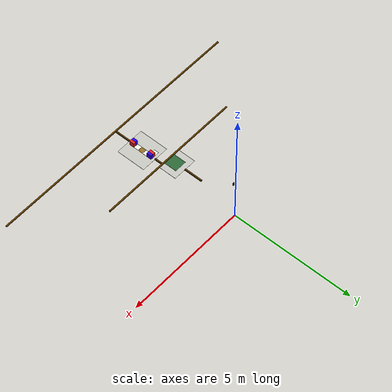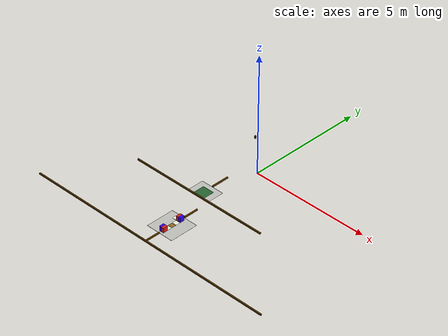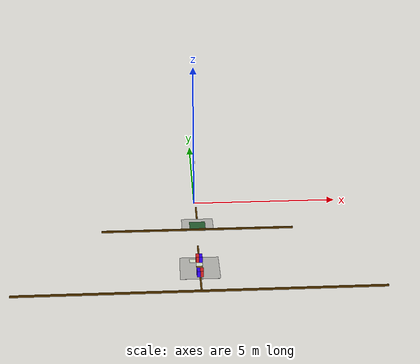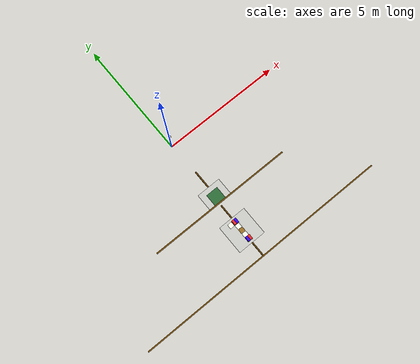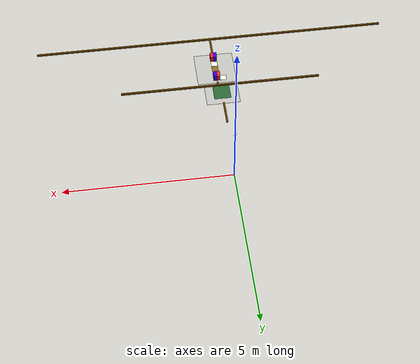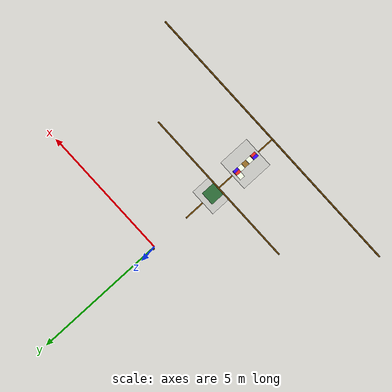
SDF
<sdf version="1.9">
 <world name="robocon_2027">
  <model name="robocon_2027_field">
   <static>true</static>
   <link name="sky_shared_ground">
    <pose>0.000000 -4.225000 0.003000 0.000000 0.000000 0.000000</pose>
    <visual name="visual">
     <geometry><box><size>1.200000 1.200000 0.002000</size></box></geometry>
     <cast_shadows>false</cast_shadows>
     <material>
      <ambient>0.745098 0.745098 0.725490 1</ambient>
      <diffuse>0.745098 0.745098 0.725490 1</diffuse>
      <specular>0.08 0.08 0.08 1</specular>
      <double_sided>true</double_sided>
     </material>
    </visual>
   </link>
   <link name="sky_grid_0_2">
    <pose>0.000000 -4.625000 0.006000 0.000000 0.000000 0.000000</pose>
    <visual name="visual">
     <geometry><box><size>0.192000 0.192000 0.002000</size></box></geometry>
     <cast_shadows>false</cast_shadows>
     <material>
      <ambient>0.803922 0.901961 0.745098 1</ambient>
      <diffuse>0.803922 0.901961 0.745098 1</diffuse>
      <specular>0.08 0.08 0.08 1</specular>
      <double_sided>true</double_sided>
     </material>
    </visual>
   </link>
   <link name="sky_grid_1_2">
    <pose>0.000000 -4.425000 0.006000 0.000000 0.000000 0.000000</pose>
    <visual name="visual">
     <geometry><box><size>0.192000 0.192000 0.002000</size></box></geometry>
     <cast_shadows>false</cast_shadows>
     <material>
      <ambient>0.921569 0.960784 0.862745 1</ambient>
      <diffuse>0.921569 0.960784 0.862745 1</diffuse>
      <specular>0.08 0.08 0.08 1</specular>
      <double_sided>true</double_sided>
     </material>
    </visual>
   </link>
   <link name="sky_grid_2_2">
    <pose>0.000000 -4.225000 0.006000 0.000000 0.000000 0.000000</pose>
    <visual name="visual">
     <geometry><box><size>0.192000 0.192000 0.002000</size></box></geometry>
     <cast_shadows>false</cast_shadows>
     <material>
      <ambient>0.568627 0.411765 0.137255 1</ambient>
      <diffuse>0.568627 0.411765 0.137255 1</diffuse>
      <specular>0.08 0.08 0.08 1</specular>
      <double_sided>true</double_sided>
     </material>
    </visual>
   </link>
   <link name="sky_grid_3_2">
    <pose>0.000000 -4.025000 0.006000 0.000000 0.000000 0.000000</pose>
    <visual name="visual">
     <geometry><box><size>0.192000 0.192000 0.002000</size></box></geometry>
     <cast_shadows>false</cast_shadows>
     <material>
      <ambient>0.921569 0.960784 0.862745 1</ambient>
      <diffuse>0.921569 0.960784 0.862745 1</diffuse>
      <specular>0.08 0.08 0.08 1</specular>
      <double_sided>true</double_sided>
     </material>
    </visual>
   </link>
   <link name="sky_grid_4_1">
    <pose>-0.200000 -3.825000 0.006000 0.000000 0.000000 0.000000</pose>
    <visual name="visual">
     <geometry><box><size>0.192000 0.192000 0.002000</size></box></geometry>
     <cast_shadows>false</cast_shadows>
     <material>
      <ambient>0.921569 0.960784 0.862745 1</ambient>
      <diffuse>0.921569 0.960784 0.862745 1</diffuse>
      <specular>0.08 0.08 0.08 1</specular>
      <double_sided>true</double_sided>
     </material>
    </visual>
   </link>
   <link name="sky_grid_4_2">
    <pose>0.000000 -3.825000 0.006000 0.000000 0.000000 0.000000</pose>
    <visual name="visual">
     <geometry><box><size>0.192000 0.192000 0.002000</size></box></geometry>
     <cast_shadows>false</cast_shadows>
     <material>
      <ambient>0.803922 0.901961 0.745098 1</ambient>
      <diffuse>0.803922 0.901961 0.745098 1</diffuse>
      <specular>0.08 0.08 0.08 1</specular>
      <double_sided>true</double_sided>
     </material>
    </visual>
   </link>
   <link name="wall_ground_y_neg">
    <pose>0.000000 -5.475000 0.025000 0.000000 0.000000 0.000000</pose>
    <collision name="collision">
     <geometry><box><size>10.900000 0.050000 0.050000</size></box></geometry>
    </collision>
    <visual name="visual">
     <geometry><box><size>10.900000 0.050000 0.050000</size></box></geometry>
     <material>
      <ambient>0.392157 0.243137 0.000000 1</ambient>
      <diffuse>0.392157 0.243137 0.000000 1</diffuse>
      <specular>0.08 0.08 0.08 1</specular>
      <double_sided>true</double_sided>
     </material>
    </visual>
   </link>
   <link name="wall_ground_divider_negative_inner">
    <pose>0.000000 -3.312500 0.025000 0.000000 0.000000 0.000000</pose>
    <collision name="collision">
     <geometry><box><size>0.050000 0.625000 0.050000</size></box></geometry>
    </collision>
    <visual name="visual">
     <geometry><box><size>0.050000 0.625000 0.050000</size></box></geometry>
     <material>
      <ambient>0.392157 0.243137 0.000000 1</ambient>
      <diffuse>0.392157 0.243137 0.000000 1</diffuse>
      <specular>0.08 0.08 0.08 1</specular>
      <double_sided>true</double_sided>
     </material>
    </visual>
   </link>
   <link name="wall_ground_divider_negative_outer">
    <pose>0.000000 -5.137500 0.025000 0.000000 0.000000 0.000000</pose>
    <collision name="collision">
     <geometry><box><size>0.050000 0.625000 0.050000</size></box></geometry>
    </collision>
    <visual name="visual">
     <geometry><box><size>0.050000 0.625000 0.050000</size></box></geometry>
     <material>
      <ambient>0.392157 0.243137 0.000000 1</ambient>
      <diffuse>0.392157 0.243137 0.000000 1</diffuse>
      <specular>0.08 0.08 0.08 1</specular>
      <double_sided>true</double_sided>
     </material>
    </visual>
   </link>
   <link name="l1_shared_negative">
    <pose>0.000000 -2.625000 0.601000 0.000000 0.000000 0.000000</pose>
    <visual name="visual">
     <geometry><box><size>1.000000 0.750000 0.002000</size></box></geometry>
     <cast_shadows>false</cast_shadows>
     <material>
      <ambient>0.745098 0.745098 0.725490 1</ambient>
      <diffuse>0.745098 0.745098 0.725490 1</diffuse>
      <specular>0.08 0.08 0.08 1</specular>
      <double_sided>true</double_sided>
     </material>
    </visual>
   </link>
   <link name="l1_shared_spot_negative">
    <pose>0.000000 -2.700000 0.603000 0.000000 0.000000 0.000000</pose>
    <visual name="visual">
     <geometry><box><size>0.500000 0.500000 0.002000</size></box></geometry>
     <cast_shadows>false</cast_shadows>
     <material>
      <ambient>0.156863 0.392157 0.196078 1</ambient>
      <diffuse>0.156863 0.392157 0.196078 1</diffuse>
      <specular>0.08 0.08 0.08 1</specular>
      <double_sided>true</double_sided>
     </material>
    </visual>
   </link>
   <link name="wall_l1_y_neg">
    <pose>0.000000 -2.975000 0.625000 0.000000 0.000000 0.000000</pose>
    <collision name="collision">
     <geometry><box><size>6.000000 0.050000 0.050000</size></box></geometry>
    </collision>
    <visual name="visual">
     <geometry><box><size>6.000000 0.050000 0.050000</size></box></geometry>
     <material>
      <ambient>0.392157 0.243137 0.000000 1</ambient>
      <diffuse>0.392157 0.243137 0.000000 1</diffuse>
      <specular>0.08 0.08 0.08 1</specular>
      <double_sided>true</double_sided>
     </material>
    </visual>
   </link>
   <link name="wall_l1_divider_negative">
    <pose>0.000000 -1.875000 0.625000 0.000000 0.000000 0.000000</pose>
    <collision name="collision">
     <geometry><box><size>0.050000 0.750000 0.050000</size></box></geometry>
    </collision>
    <visual name="visual">
     <geometry><box><size>0.050000 0.750000 0.050000</size></box></geometry>
     <material>
      <ambient>0.392157 0.243137 0.000000 1</ambient>
      <diffuse>0.392157 0.243137 0.000000 1</diffuse>
      <specular>0.08 0.08 0.08 1</specular>
      <double_sided>true</double_sided>
     </material>
    </visual>
   </link>
   <link name="central_pillar_cup_ring_17">
    <pose>-0.029117 -0.108667 1.650000 0.000000 0.000000 4.450590</pose>
    <collision name="collision">
     <geometry><box><size>0.045000 0.035343 0.100000</size></box></geometry>
    </collision>
    <visual name="visual">
     <geometry><box><size>0.045000 0.035343 0.100000</size></box></geometry>
     <material>
      <ambient>0.392157 0.243137 0.000000 1</ambient>
      <diffuse>0.392157 0.243137 0.000000 1</diffuse>
      <specular>0.08 0.08 0.08 1</specular>
      <double_sided>true</double_sided>
     </material>
    </visual>
   </link>
   <link name="central_pillar_cup_ring_18">
    <pose>-0.000000 -0.112500 1.650000 0.000000 0.000000 4.712389</pose>
    <collision name="collision">
     <geometry><box><size>0.045000 0.035343 0.100000</size></box></geometry>
    </collision>
    <visual name="visual">
     <geometry><box><size>0.045000 0.035343 0.100000</size></box></geometry>
     <material>
      <ambient>0.392157 0.243137 0.000000 1</ambient>
      <diffuse>0.392157 0.243137 0.000000 1</diffuse>
      <specular>0.08 0.08 0.08 1</specular>
      <double_sided>true</double_sided>
     </material>
    </visual>
   </link>
  </model>
  <model name="sky_block_02">
   <pose>0.000000 -3.825000 0.100000 0.000000 0.000000 3.141593</pose>
   <link name="sky_block_02_link">
    <inertial>
     <mass>0.115000</mass>
     <inertia>
      <ixx>0.00076667</ixx>
      <iyy>0.00076667</iyy>
      <izz>0.00076667</izz>
      <ixy>0.00000000</ixy>
      <ixz>0.00000000</ixz>
      <iyz>0.00000000</iyz>
     </inertia>
    </inertial>
    <collision name="collision">
     <geometry><box><size>0.200000 0.200000 0.200000</size></box></geometry>
     <surface><friction><ode><mu>0.80</mu><mu2>0.80</mu2></ode></friction></surface>
    </collision>
    <visual name="red_half">
     <pose>0.050000 0.000000 0.000000 0.000000 0.000000 0.000000</pose>
     <geometry><box><size>0.100000 0.200000 0.200000</size></box></geometry>
     <material>
      <ambient>0.874510 0.133333 0.133333 1</ambient>
      <diffuse>0.874510 0.133333 0.133333 1</diffuse>
      <specular>0.08 0.08 0.08 1</specular>
      <double_sided>true</double_sided>
     </material>
    </visual>
    <visual name="blue_half">
     <pose>-0.050000 0.000000 0.000000 0.000000 0.000000 0.000000</pose>
     <geometry><box><size>0.100000 0.200000 0.200000</size></box></geometry>
     <material>
      <ambient>0.196078 0.000000 1.000000 1</ambient>
      <diffuse>0.196078 0.000000 1.000000 1</diffuse>
      <specular>0.08 0.08 0.08 1</specular>
      <double_sided>true</double_sided>
     </material>
    </visual>
   </link>
  </model>
  <model name="sky_block_11">
   <pose>0.000000 -4.625000 0.100000 0.000000 0.000000 0.000000</pose>
   <link name="sky_block_11_link">
    <inertial>
     <mass>0.115000</mass>
     <inertia>
      <ixx>0.00076667</ixx>
      <iyy>0.00076667</iyy>
      <izz>0.00076667</izz>
      <ixy>0.00000000</ixy>
      <ixz>0.00000000</ixz>
      <iyz>0.00000000</iyz>
     </inertia>
    </inertial>
    <collision name="collision">
     <geometry><box><size>0.200000 0.200000 0.200000</size></box></geometry>
     <surface><friction><ode><mu>0.80</mu><mu2>0.80</mu2></ode></friction></surface>
    </collision>
    <visual name="red_half">
     <pose>0.050000 0.000000 0.000000 0.000000 0.000000 0.000000</pose>
     <geometry><box><size>0.100000 0.200000 0.200000</size></box></geometry>
     <material>
      <ambient>0.874510 0.133333 0.133333 1</ambient>
      <diffuse>0.874510 0.133333 0.133333 1</diffuse>
      <specular>0.08 0.08 0.08 1</specular>
      <double_sided>true</double_sided>
     </material>
    </visual>
    <visual name="blue_half">
     <pose>-0.050000 0.000000 0.000000 0.000000 0.000000 0.000000</pose>
     <geometry><box><size>0.100000 0.200000 0.200000</size></box></geometry>
     <material>
      <ambient>0.196078 0.000000 1.000000 1</ambient>
      <diffuse>0.196078 0.000000 1.000000 1</diffuse>
      <specular>0.08 0.08 0.08 1</specular>
      <double_sided>true</double_sided>
     </material>
    </visual>
   </link>
  </model>
 </world>
</sdf>
